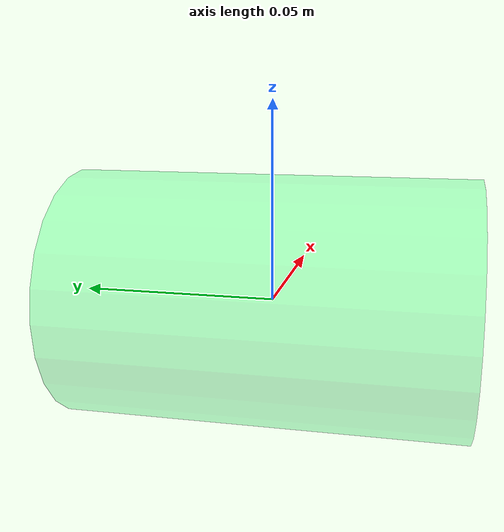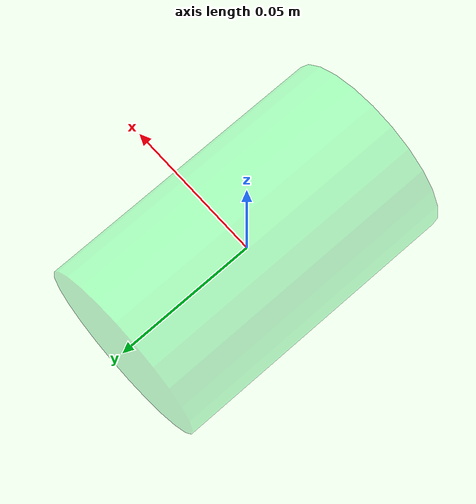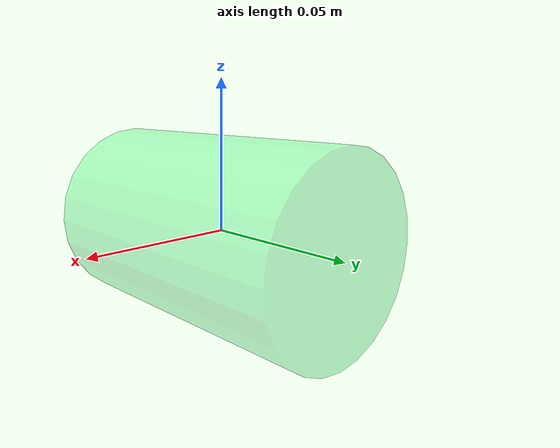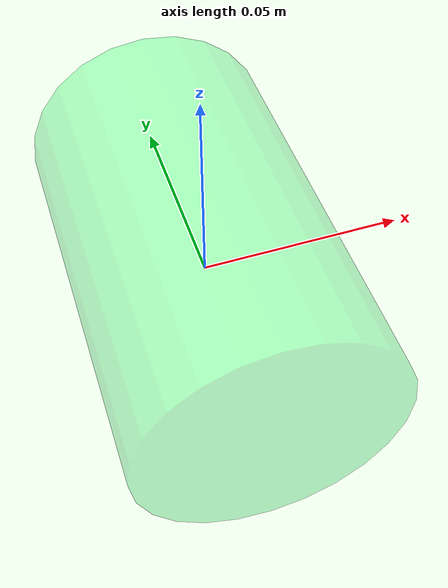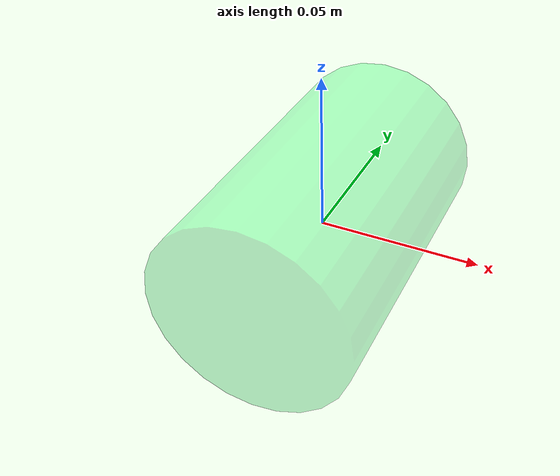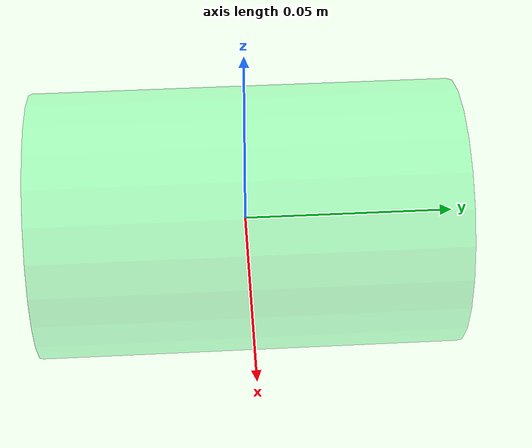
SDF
<?xml version="1.0"?>
<sdf version="1.7">
  <model name="005_tomato_soup_can_visual5">
    <link name="base_link_soup_visual5">
      <inertial>
        <mass>0.349000</mass>
        <inertia>
          <ixx>0.000402</ixx>
          <ixy>0</ixy>
          <ixz>0</ixz>
          <iyy>0.000200</iyy>
          <iyz>0</iyz>
          <izz>0.000402</izz>
        </inertia>
      </inertial>
      <visual name="base_link_soup_visual5">
        <pose>0.  0.  0. 1.57 0. 0.</pose>
        <geometry>
          <cylinder>
            <radius>0.031850</radius>
            <length>0.099900</length>
          </cylinder>
        </geometry>
        <material>
          <diffuse>0.0 1.0 0.3 0.3</diffuse>  <!-- RGBA: White with 40% opacity (60% transparent) -->
        </material>
      </visual>
    </link>
  </model>
</sdf>
